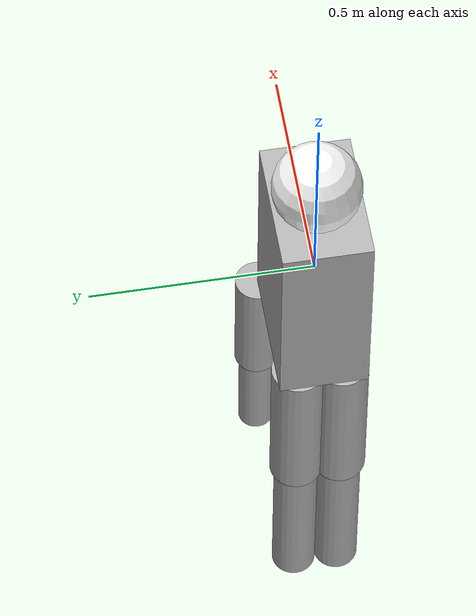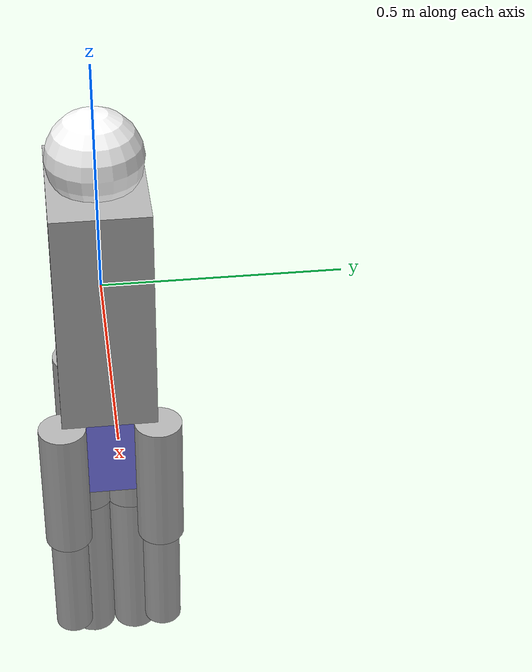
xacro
<?xml version="1.0"?>
<robot xmlns:xacro="http://www.ros.org/wiki/xacro" name="humanoid_robot">

  <!-- Constants -->
  <xacro:property name="M_PI" value="3.1415926535897931" />

  <!-- Base link -->
  <link name="base_link">
    <visual>
      <geometry>
        <box size="0.3 0.2 0.5"/>
      </geometry>
      <material name="light_grey">
        <color rgba="0.7 0.7 0.7 1.0"/>
      </material>
    </visual>
    <collision>
      <geometry>
        <box size="0.3 0.2 0.5"/>
      </geometry>
    </collision>
    <inertial>
      <mass value="10"/>
      <inertia ixx="1" ixy="0" ixz="0" iyy="1" iyz="0" izz="1"/>
    </inertial>
  </link>

  <!-- Head -->
  <joint name="head_joint" type="fixed">
    <parent link="base_link"/>
    <child link="head"/>
    <origin xyz="0 0 0.3" rpy="0 0 0"/>
  </joint>

  <link name="head">
    <visual>
      <geometry>
        <sphere radius="0.1"/>
      </geometry>
      <material name="white">
        <color rgba="1 1 1 1"/>
      </material>
    </visual>
    <collision>
      <geometry>
        <sphere radius="0.1"/>
      </geometry>
    </collision>
    <inertial>
      <mass value="1"/>
      <inertia ixx="0.01" ixy="0" ixz="0" iyy="0.01" iyz="0" izz="0.01"/>
    </inertial>
  </link>

  <!-- Camera for perception -->
  <joint name="camera_joint" type="fixed">
    <parent link="head"/>
    <child link="camera_link"/>
    <origin xyz="0.05 0 0" rpy="0 0 0"/>
  </joint>

  <link name="camera_link">
    <inertial>
      <mass value="0.1"/>
      <inertia ixx="0.001" ixy="0" ixz="0" iyy="0.001" iyz="0" izz="0.001"/>
    </inertial>
  </link>

  <!-- Torso -->
  <joint name="torso_joint" type="fixed">
    <parent link="base_link"/>
    <child link="torso"/>
    <origin xyz="0 0 -0.25" rpy="0 0 0"/>
  </joint>

  <link name="torso">
    <visual>
      <geometry>
        <box size="0.25 0.15 0.4"/>
      </geometry>
      <material name="light_blue">
        <color rgba="0.5 0.5 1.0 1.0"/>
      </material>
    </visual>
    <collision>
      <geometry>
        <box size="0.25 0.15 0.4"/>
      </geometry>
    </collision>
    <inertial>
      <mass value="5"/>
      <inertia ixx="0.2" ixy="0" ixz="0" iyy="0.2" iyz="0" izz="0.2"/>
    </inertial>
  </link>

  <!-- Left Arm -->
  <joint name="left_shoulder_joint" type="revolute">
    <parent link="torso"/>
    <child link="left_upper_arm"/>
    <origin xyz="0.15 0.1 0" rpy="0 0 0"/>
    <axis xyz="0 1 0"/>
    <limit lower="${-M_PI/2}" upper="${M_PI/2}" effort="100" velocity="1"/>
  </joint>

  <link name="left_upper_arm">
    <visual>
      <geometry>
        <cylinder length="0.3" radius="0.05"/>
      </geometry>
      <origin xyz="0 0 -0.15" rpy="0 0 0"/>
      <material name="light_grey">
        <color rgba="0.7 0.7 0.7 1.0"/>
      </material>
    </visual>
    <collision>
      <geometry>
        <cylinder length="0.3" radius="0.05"/>
      </geometry>
      <origin xyz="0 0 -0.15" rpy="0 0 0"/>
    </collision>
    <inertial>
      <mass value="1"/>
      <inertia ixx="0.01" ixy="0" ixz="0" iyy="0.01" iyz="0" izz="0.01"/>
    </inertial>
  </link>

  <joint name="left_elbow_joint" type="revolute">
    <parent link="left_upper_arm"/>
    <child link="left_lower_arm"/>
    <origin xyz="0 0 -0.3" rpy="0 0 0"/>
    <axis xyz="0 1 0"/>
    <limit lower="${-M_PI/2}" upper="${M_PI/2}" effort="100" velocity="1"/>
  </joint>

  <link name="left_lower_arm">
    <visual>
      <geometry>
        <cylinder length="0.25" radius="0.04"/>
      </geometry>
      <origin xyz="0 0 -0.125" rpy="0 0 0"/>
      <material name="light_grey">
        <color rgba="0.7 0.7 0.7 1.0"/>
      </material>
    </visual>
    <collision>
      <geometry>
        <cylinder length="0.25" radius="0.04"/>
      </geometry>
      <origin xyz="0 0 -0.125" rpy="0 0 0"/>
    </collision>
    <inertial>
      <mass value="0.5"/>
      <inertia ixx="0.005" ixy="0" ixz="0" iyy="0.005" iyz="0" izz="0.005"/>
    </inertial>
  </link>

  <!-- Right Arm -->
  <joint name="right_shoulder_joint" type="revolute">
    <parent link="torso"/>
    <child link="right_upper_arm"/>
    <origin xyz="0.15 -0.1 0" rpy="0 0 0"/>
    <axis xyz="0 1 0"/>
    <limit lower="${-M_PI/2}" upper="${M_PI/2}" effort="100" velocity="1"/>
  </joint>

  <link name="right_upper_arm">
    <visual>
      <geometry>
        <cylinder length="0.3" radius="0.05"/>
      </geometry>
      <origin xyz="0 0 -0.15" rpy="0 0 0"/>
      <material name="light_grey">
        <color rgba="0.7 0.7 0.7 1.0"/>
      </material>
    </visual>
    <collision>
      <geometry>
        <cylinder length="0.3" radius="0.05"/>
      </geometry>
      <origin xyz="0 0 -0.15" rpy="0 0 0"/>
    </collision>
    <inertial>
      <mass value="1"/>
      <inertia ixx="0.01" ixy="0" ixz="0" iyy="0.01" iyz="0" izz="0.01"/>
    </inertial>
  </link>

  <joint name="right_elbow_joint" type="revolute">
    <parent link="right_upper_arm"/>
    <child link="right_lower_arm"/>
    <origin xyz="0 0 -0.3" rpy="0 0 0"/>
    <axis xyz="0 1 0"/>
    <limit lower="${-M_PI/2}" upper="${M_PI/2}" effort="100" velocity="1"/>
  </joint>

  <link name="right_lower_arm">
    <visual>
      <geometry>
        <cylinder length="0.25" radius="0.04"/>
      </geometry>
      <origin xyz="0 0 -0.125" rpy="0 0 0"/>
      <material name="light_grey">
        <color rgba="0.7 0.7 0.7 1.0"/>
      </material>
    </visual>
    <collision>
      <geometry>
        <cylinder length="0.25" radius="0.04"/>
      </geometry>
      <origin xyz="0 0 -0.125" rpy="0 0 0"/>
    </collision>
    <inertial>
      <mass value="0.5"/>
      <inertia ixx="0.005" ixy="0" ixz="0" iyy="0.005" iyz="0" izz="0.005"/>
    </inertial>
  </link>

  <!-- Left Leg -->
  <joint name="left_hip_joint" type="revolute">
    <parent link="base_link"/>
    <child link="left_upper_leg"/>
    <origin xyz="-0.1 0.05 -0.25" rpy="0 0 0"/>
    <axis xyz="0 1 0"/>
    <limit lower="${-M_PI/2}" upper="${M_PI/2}" effort="100" velocity="1"/>
  </joint>

  <link name="left_upper_leg">
    <visual>
      <geometry>
        <cylinder length="0.4" radius="0.06"/>
      </geometry>
      <origin xyz="0 0 -0.2" rpy="0 0 0"/>
      <material name="light_grey">
        <color rgba="0.7 0.7 0.7 1.0"/>
      </material>
    </visual>
    <collision>
      <geometry>
        <cylinder length="0.4" radius="0.06"/>
      </geometry>
      <origin xyz="0 0 -0.2" rpy="0 0 0"/>
    </collision>
    <inertial>
      <mass value="2"/>
      <inertia ixx="0.04" ixy="0" ixz="0" iyy="0.04" iyz="0" izz="0.04"/>
    </inertial>
  </link>

  <joint name="left_knee_joint" type="revolute">
    <parent link="left_upper_leg"/>
    <child link="left_lower_leg"/>
    <origin xyz="0 0 -0.4" rpy="0 0 0"/>
    <axis xyz="0 1 0"/>
    <limit lower="${-M_PI/2}" upper="${M_PI/2}" effort="100" velocity="1"/>
  </joint>

  <link name="left_lower_leg">
    <visual>
      <geometry>
        <cylinder length="0.4" radius="0.05"/>
      </geometry>
      <origin xyz="0 0 -0.2" rpy="0 0 0"/>
      <material name="light_grey">
        <color rgba="0.7 0.7 0.7 1.0"/>
      </material>
    </visual>
    <collision>
      <geometry>
        <cylinder length="0.4" radius="0.05"/>
      </geometry>
      <origin xyz="0 0 -0.2" rpy="0 0 0"/>
    </collision>
    <inertial>
      <mass value="1.5"/>
      <inertia ixx="0.03" ixy="0" ixz="0" iyy="0.03" iyz="0" izz="0.03"/>
    </inertial>
  </link>

  <!-- Right Leg -->
  <joint name="right_hip_joint" type="revolute">
    <parent link="base_link"/>
    <child link="right_upper_leg"/>
    <origin xyz="-0.1 -0.05 -0.25" rpy="0 0 0"/>
    <axis xyz="0 1 0"/>
    <limit lower="${-M_PI/2}" upper="${M_PI/2}" effort="100" velocity="1"/>
  </joint>

  <link name="right_upper_leg">
    <visual>
      <geometry>
        <cylinder length="0.4" radius="0.06"/>
      </geometry>
      <origin xyz="0 0 -0.2" rpy="0 0 0"/>
      <material name="light_grey">
        <color rgba="0.7 0.7 0.7 1.0"/>
      </material>
    </visual>
    <collision>
      <geometry>
        <cylinder length="0.4" radius="0.06"/>
      </geometry>
      <origin xyz="0 0 -0.2" rpy="0 0 0"/>
    </collision>
    <inertial>
      <mass value="2"/>
      <inertia ixx="0.04" ixy="0" ixz="0" iyy="0.04" iyz="0" izz="0.04"/>
    </inertial>
  </link>

  <joint name="right_knee_joint" type="revolute">
    <parent link="right_upper_leg"/>
    <child link="right_lower_leg"/>
    <origin xyz="0 0 -0.4" rpy="0 0 0"/>
    <axis xyz="0 1 0"/>
    <limit lower="${-M_PI/2}" upper="${M_PI/2}" effort="100" velocity="1"/>
  </joint>

  <link name="right_lower_leg">
    <visual>
      <geometry>
        <cylinder length="0.4" radius="0.05"/>
      </geometry>
      <origin xyz="0 0 -0.2" rpy="0 0 0"/>
      <material name="light_grey">
        <color rgba="0.7 0.7 0.7 1.0"/>
      </material>
    </visual>
    <collision>
      <geometry>
        <cylinder length="0.4" radius="0.05"/>
      </geometry>
      <origin xyz="0 0 -0.2" rpy="0 0 0"/>
    </collision>
    <inertial>
      <mass value="1.5"/>
      <inertia ixx="0.03" ixy="0" ixz="0" iyy="0.03" iyz="0" izz="0.03"/>
    </inertial>
  </link>

  <!-- Gazebo plugin for the robot -->
  <gazebo>
    <plugin name="gazebo_ros_control" filename="libgazebo_ros_control.so">
      <robotNamespace>/humanoid</robotNamespace>
    </plugin>
  </gazebo>

  <!-- Gazebo materials -->
  <gazebo reference="base_link">
    <material>Gazebo/Grey</material>
  </gazebo>

  <gazebo reference="head">
    <material>Gazebo/White</material>
  </gazebo>

  <gazebo reference="torso">
    <material>Gazebo/Blue</material>
  </gazebo>

  <gazebo reference="left_upper_arm">
    <material>Gazebo/Grey</material>
  </gazebo>

  <gazebo reference="left_lower_arm">
    <material>Gazebo/Grey</material>
  </gazebo>

  <gazebo reference="right_upper_arm">
    <material>Gazebo/Grey</material>
  </gazebo>

  <gazebo reference="right_lower_arm">
    <material>Gazebo/Grey</material>
  </gazebo>

  <gazebo reference="left_upper_leg">
    <material>Gazebo/Grey</material>
  </gazebo>

  <gazebo reference="left_lower_leg">
    <material>Gazebo/Grey</material>
  </gazebo>

  <gazebo reference="right_upper_leg">
    <material>Gazebo/Grey</material>
  </gazebo>

  <gazebo reference="right_lower_leg">
    <material>Gazebo/Grey</material>
  </gazebo>

</robot>
